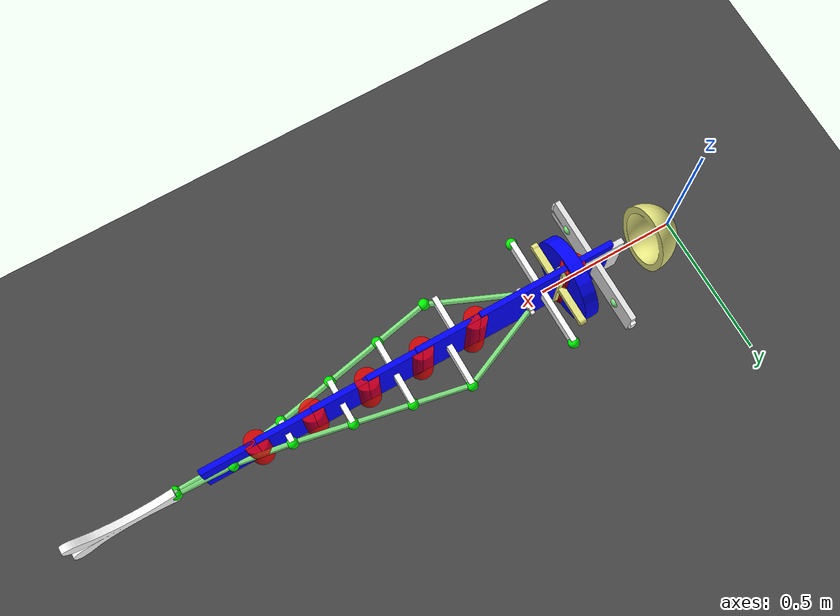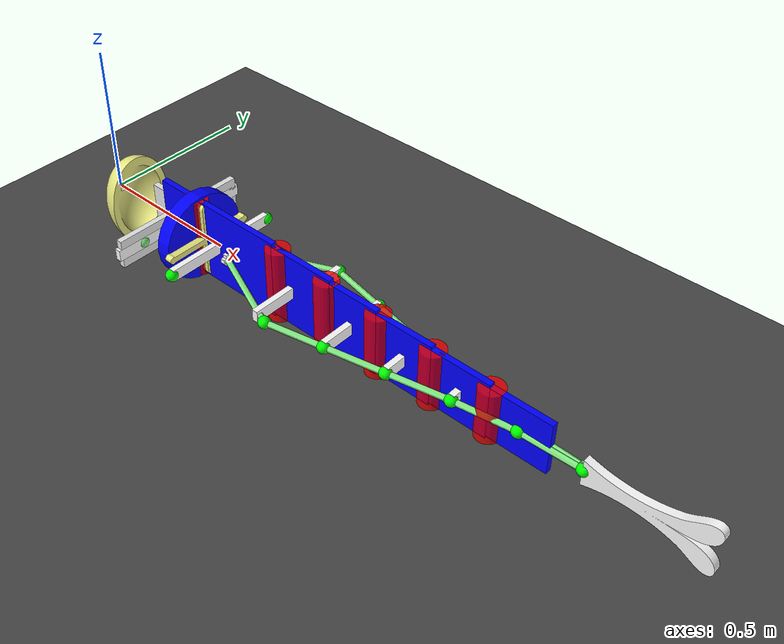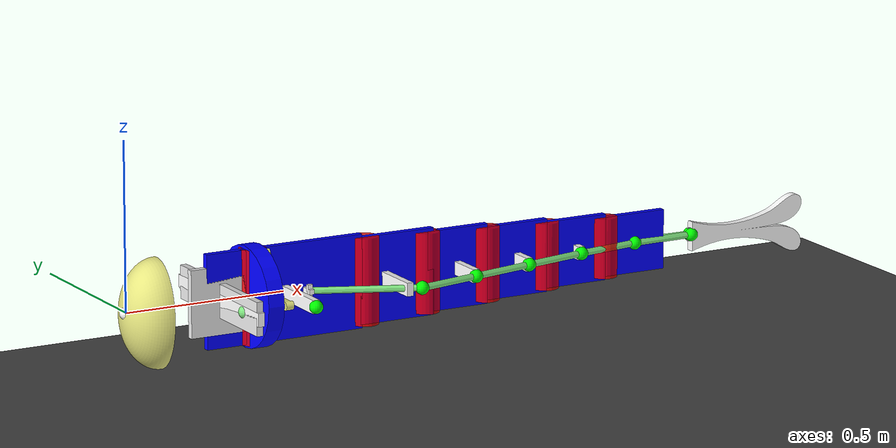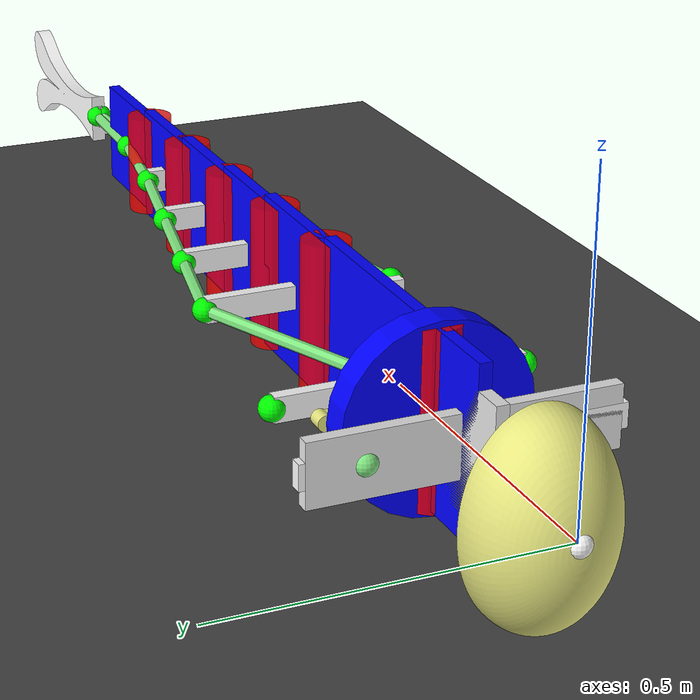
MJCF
<!--Uses the scotch yoke model built in ScotchYoke and adds it into a prexisting fish (MujocoFishMotor)-->
<!--Mostly done for looks. Physics isn't great on it yet, need to workout the masses to avoid unintentional movement with scotch yoke pattern-->
<mujoco model="tendonFish">
    <option integrator="implicitfast" timestep="0.001" iterations="100" solver="Newton" tolerance="1e-10" gravity="0 0 0" density="800" viscosity="0.001"/>

    <visual>
        <global offheight="2160" offwidth="3840"/>
        <rgba haze=".3 .3 .3 1"/>
    </visual>

    <asset>
        <mesh name="tailMesh" file="mujoco-3.3.2-windows-x86_64/model/mesh/UpdatedTail.STL" scale="0.0045 0.0045 0.0065" />
        <mesh name="headMesh" file="mujoco-3.3.2-windows-x86_64/model/mesh/FishNose.STL" scale="0.0045 0.0045 0.0065" />
        <mesh name="Yoke" file="mujoco-3.3.2-windows-x86_64\model\mesh\Yoke (stl).stl" scale=" .005 .01 .005" />
        <texture type="skybox" builtin="gradient" rgb1="0.6 0.6 0.6" rgb2="0 0 0" width="512" height="512" />
        <texture name="texplane" type="2d" builtin="checker" rgb1=".25 .25 .25" rgb2=".3 .3 .3"
             width="512" height="512" mark="cross" markrgb=".8 .8 .8" />
        <material name="matplane" reflectance="0.3" texture="texplane" texrepeat="1 1" texuniform="true" />
    </asset>

    <default>
        <joint type="hinge" pos="0 0 0" axis="0 0 1" range="-80 80" stiffness="10" damping="10" />
    </default>

    <worldbody>
        <camera name="fixed" pos="0.4 -1.2 1.2" xyaxes="1 0 0 0 1 1"/>
        <camera name="fixedTop" pos="-0.75 0 1.5" xyaxes="0 -1 0 1 0 0.75"/>
        <camera name="fixedDiag" pos="2.5 -4.0 4.0" xyaxes="0.8 0.6 0 -0.4 0.5 0.75"/>
        <geom name="floor" pos="0 0 -0.5" size="0 0 1" type="plane" material="matplane"/>
        <light directional="true" diffuse=".8 .8 .8" specular=".2 .2 .2" pos="0 0 5" dir="0 0 -1"/>

        <body pos="0 0 0">
            <freejoint />

            <geom name="head_mesh" type="mesh" mesh="headMesh" pos=".1 .115 .15" quat="0 -0.7071 0.7071 0" rgba=".9 .9 .5 1" mass=".25" fluidshape="ellipsoid" contype="1" conaffinity="1"/>
            <geom name="headSegment" type="box" pos="0.3 0 0" size="0.1 0.01 0.1" rgba=".9 .9 .9 1" mass="0.1" />
            <geom name="headLeft" type="box" pos="0.3 -0.12 0" size="0.01 .12 0.05" rgba=".9 .9 .9 1" mass="0.1" />
            <geom name="headRight" type="box" pos="0.3 0.12 0" size="0.01 .12 0.05" rgba=".9 .9 .9 1" mass="0.1" />

            <site name="headCenter" pos="0 0 0" size=".02" rgba="255 255 255 1" />
            <site name="headLeft" pos="0.3 -0.15 0" size="0.02" rgba=".5 .9 .5 1"/>
            <site name="headRight" pos="0.3 0.15 0" size="0.02" rgba=".5 .9 .5 1"/>

            <body pos="0.4 0 0">
                    <geom name="headJoint" type="cylinder" pos="0 0 0" size="0.04 0.14" rgba="255 0 0 .8" mass="0" />
                    <joint name="headJoint" />
                    <geom name="tail0" type="box" pos="0.1 0 0" size="0.25 0.01 0.14" rgba="0 0 255 1" mass="0.1" />
                    <geom name="tail0left" type="box" pos="0.1 -0.1 0" size="0.01 .1 0.02" rgba="1 1 1 1" mass="0.1" />
                    <geom name="tail0right" type="box" pos="0.1 0.1 0" size="0.01 .1 0.02" rgba="1 1 1 1" mass="0.1" />
                    <site name="tail0left" pos="0.1 -0.2 0" size="0.02" rgba="0 255 0 1" />
                    <site name="tail0right" pos="0.1 0.2 0" size="0.02" rgba="0 255 0 1" />

            <body name="cam" pos="0 0 0" quat="0 0.7071 0 0.7071">
            <!-- hinge joint allows free rotation -->
            <joint name="Rotor" type="hinge" axis="0 0 1" limited="false" stiffness="300" damping="800"/>

            <!-- cylinder base -->
            <geom type="cylinder" size=".15 .025" rgba="0 0 1 1" contype="0" conaffinity="0" mass=".005" />

            <!-- Yoke mesh attached to cam -->
            <geom name="YokeMesh" type="mesh" mesh="Yoke" pos="0 0 .05"
            rgba=".9 .9 .5 1" mass="0"
            quat="-0.5 0.5 0.5 -0.5"
             contype="0" conaffinity="0"/>
            </body>

            <!-- motor body nested inside -->
            <body name="motorBody" pos="-.1 0 0" quat="0.7071 0 0.7071 0">
                <joint name="motor_slide" type="slide" axis="0 1 0" limited="true" range="-0.02 0.02" stiffness="1000" damping="1000"/>
                <geom name="motorSlide" type="box" pos="0 0 0" size="0.02 0.25 0.01" rgba="1 1 1 1" density=".0001" contype="0" conaffinity="0"/>
            </body>

            <body pos="0.1655 0 0" name="motor">
                <geom name="motorShaft" type="box" pos="0 0 0" size="0.0075 0.05 0.0075" rgba="255 255 255 1" mass="0.05" fluidshape="ellipsoid"/>

                <body name="motorArmLeftBody" pos="0 -0.035 0">
                    <joint name="left_slide" type="slide" axis="0 1 0" limited="true" range="-0.02 0.02" stiffness="10" damping="10"/>
                    <geom name="motorArmLeft" type="box" pos="0 0 0" size="0.0075 0.005 0.01975" rgba="255 255 255 1" density="1250"/>
                    <site name="bodyLeft" pos=".01 0 0" size="0.005" rgba=".9 .6 .5 .5"/>
                </body>

                <body name="motorArmRightBody" pos="0 0.035 0">
                    <joint name="right_slide" type="slide" axis="0 -1 0" limited="true" range="-0.02 0.02" stiffness="10" damping="10"/>
                    <geom name="motorArmRight" type="box" pos="0 0 0" size="0.0075 0.005 0.01975" rgba="255 255 255 1" density="1250"/>
                    <site name="bodyRight" pos=".01 0 0" size="0.005" rgba=".9 .6 .5 .5"/>
                </body>

                    <body pos="0.2 0 0">
                        <geom name="joint01" type="cylinder" pos="0 0 0" size="0.04 0.13" rgba="255 0 0 .8" mass="0" />
                        <joint name="joint01" />
                        <geom name="tail1" type="box" pos="0.1 0 0" size="0.12 0.01 0.13" rgba="0 0 255 1" mass="0.1" fluidshape="ellipsoid"/>
                        <geom name="tail1left" type="box" pos="0.06 -0.08 0" size="0.01 0.08 0.02" rgba="1 1 1 1" mass="0.1" />
                        <geom name="tail1right" type="box" pos="0.1 0.08 0" size="0.01 0.08 0.02" rgba="1 1 1 1" mass="0.1" />
                        <site name="tail1left" pos="0.1 -0.16 0" size="0.02" rgba="0 255 0 1" />
                        <site name="tail1right" pos="0.1 0.16 0" size="0.02" rgba="0 255 0 1" />

                        <body pos="0.2 0 0">
                            <geom name="joint12" type="cylinder" pos="0 0 0" size="0.04 0.12" rgba="255 0 0 .8" mass="0" />
                            <joint name="joint12" />
                            <geom name="tail2" type="box" pos="0.1 0 0" size="0.1 0.01 0.12" rgba="0 0 255 1" mass="0.1" fluidshape="ellipsoid"/>
                            <geom name="tail2left" type="box" pos="0.1 -0.06 0" size="0.01 0.06 0.02" rgba="1 1 1 1" mass="0.1" />
                            <geom name="tail2right" type="box" pos="0.1 0.06 0" size="0.01 0.06 0.02" rgba="1 1 1 1" mass="0.1" />
                            <site name="tail2left" pos="0.1 -0.12 0" size="0.02" rgba="0 255 0 1" />
                            <site name="tail2right" pos="0.1 0.12 0" size="0.02" rgba="0 255 0 1" />

                            <body pos="0.2 0 0">
                                <geom name="joint23" type="cylinder" pos="0 0 0" size="0.04 0.11" rgba="255 0 0 .8" mass="0" />
                                <joint name="joint23" />
                                <geom name="tail3" type="box" pos="0.1 0 0" size="0.1 0.01 0.11" rgba="0 0 255 1" mass="0.1" fluidshape="ellipsoid"/>
                                <geom name="tail3left" type="box" pos="0.1 -0.04 0" size="0.01 0.04 0.02" rgba="1 1 1 1" mass="0.1" />
                                <geom name="tail3right" type="box" pos="0.1 0.04 0" size="0.01 0.04 0.02" rgba="1 1 1 1" mass="0.1" />
                                <site name="tail3left" pos="0.1 -0.08 0" size="0.02" rgba="0 255 0 1" />
                                <site name="tail3right" pos="0.1 0.08 0" size="0.02" rgba="0 255 0 1" />

                                <body pos="0.2 0 0">
                                    <geom name="joint34" type="cylinder" pos="0 0 0" size="0.04 0.1" rgba="255 0 0 .8" mass="0" />
                                    <joint name="joint34" />
                                    <geom name="tail4" type="box" pos="0.1 0 0" size="0.1 0.01 0.1" rgba="0 0 255 1" mass="0.1" fluidshape="ellipsoid"/>
                                    <geom name="tail4left" type="box" pos="0.1 -0.02 0" size="0.01 0.02 0.02" rgba="1 1 1 1" mass="0.1" />
                                    <geom name="tail4right" type="box" pos="0.1 0.02 0" size="0.01 0.02 0.02" rgba="1 1 1 1" mass="0.1" />
                                    <site name="tail4left" pos="0.1 -0.04 0" size="0.02" rgba="0 255 0 1" />
                                    <site name="tail4right" pos="0.1 0.04 0" size="0.02" rgba="0 255 0 1" />

                                    <body pos="0.2 0 0">
                                        <geom name="joint45" type="cylinder" pos="0 0 0" size="0.04 0.09" rgba="255 0 0 .8" mass="0" />
                                        <joint name="joint45" />
                                        <geom name="tail5" type="box" pos="0.1 0 0" size="0.1 0.01 0.09" rgba="0 0 255 1" mass="0.1" fluidshape="ellipsoid"/>
                                        <geom name="tail5left" type="box" pos="0.1 -0.005 0" size="0.01 0.005 0.02" rgba="1 1 1 1" mass="0.1" />
                                        <geom name="tail5right" type="box" pos="0.1 0.005 0" size="0.01 0.005 0.02" rgba="1 1 1 1" mass="0.1" />
                                        <site name="tail5left" pos="0.1 -0.01 0" size="0.02" rgba="0 255 0 1" />
                                        <site name="tail5right" pos="0.1 0.01 0" size="0.02" rgba="0 255 0 1" />

                                        <body pos="0.2 0 0" euler="0 0 0">
                                            <geom name="tailJoint" type="mesh" mesh="tailMesh" pos=".1 .015 -0.1" size="0.05 .01 .08" quat="0.7071 0.7071 0 0" rgba="255 255 255 1" mass=".1" />
                                            <geom name="tailLeft" type="box" pos="0.1 -0.002 0" size="0.01 0.002 0.02" rgba=".9 .9 .9 1" mass="0.1" />
                                            <geom name="tailRight" type="box" pos="0.1 0.002 0" size="0.01 0.002 0.02" rgba=".9 .9 .9 1" mass="0.1" />
                                            <site name="tailLeft" pos="0.1 -0.004 0" size="0.02" rgba="0 255 0 1" />
                                            <site name="tailRight" pos="0.1 0.004 0" size="0.02" rgba="0 255 0 1" />
                                        </body>
                                    </body>
                                </body>
                            </body>
                        </body>
                    </body>
                </body>
            </body>
        </body>
    </worldbody>

    <tendon>
        <spatial name="tendonLeft" width="0.01" rgba=".5 .9 .5 1" stiffness="50" damping="100">
            <site site="bodyLeft"/>
            <site site="tail1left"/>
            <site site="tail2left"/>
            <site site="tail3left"/>
            <site site="tail4left"/>
            <site site="tail5left"/>
            <site site="tailLeft"/>
        </spatial>

        <spatial name="tendonRight" width="0.01" rgba=".5 .9 .5 1" stiffness="50" damping="100">
            <site site="bodyRight"/>
            <site site="tail1right"/>
            <site site="tail2right"/>
            <site site="tail3right"/>
            <site site="tail4right"/>
            <site site="tail5right"/>
            <site site="tailRight"/>
        </spatial>
    </tendon>

    <equality>
        <!-- Couple the joint positions symmetrically -->
        <joint joint1="left_slide" joint2="right_slide" polycoef="1 -1 0"/>
        <joint name="rotor_to_slide" joint1="motor_slide" joint2="Rotor" polycoef="0 -3.1831"/>
        <joint joint1="left_slide" joint2="motor_slide" polycoef="1 -1 0"/>

        <!-- Keep tendon lengths equal -->
        <tendon tendon1="tendonLeft" tendon2="tendonRight" polycoef="1 -1 0"/>
    </equality>

    <actuator>
        <velocity name="act_left" joint="left_slide" kv="100" ctrllimited="true" ctrlrange="-10 10" forcerange="-100 100"/>
        <velocity name="motorRotation" joint="Rotor" kv="100" ctrllimited="true" ctrlrange="-180 180" forcerange="-5000 5000"/>
        <velocity name="yokeDriver" joint="motor_slide" kv="100" ctrllimited="true" ctrlrange="-10 10" forcerange="-500 500"/>
    </actuator>

</mujoco>
